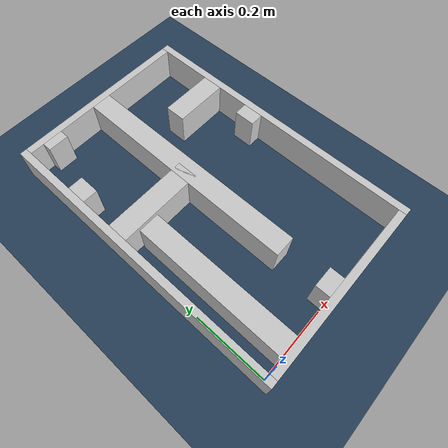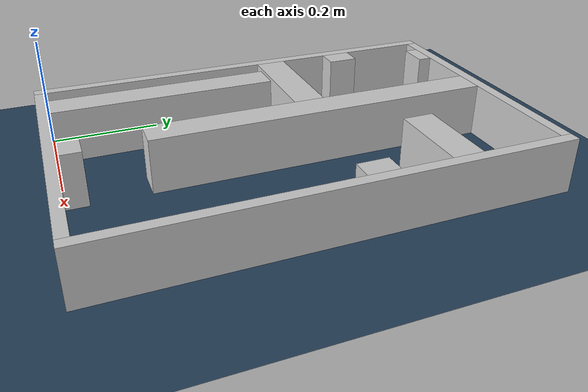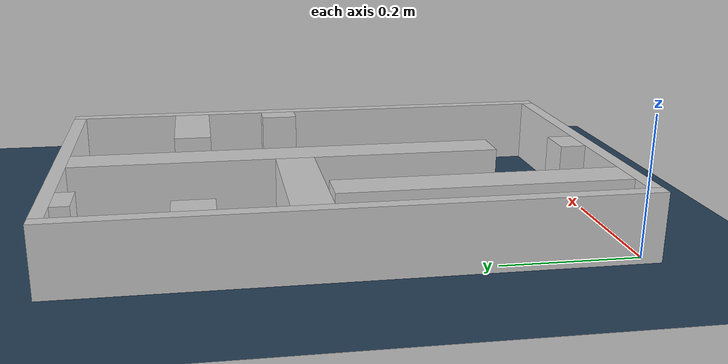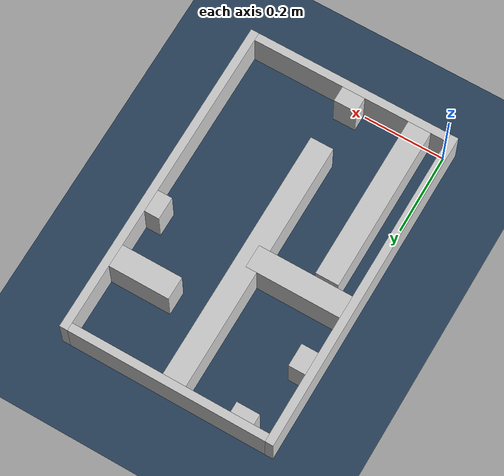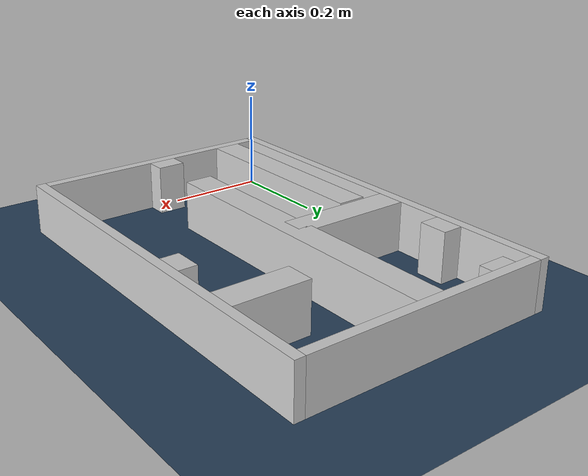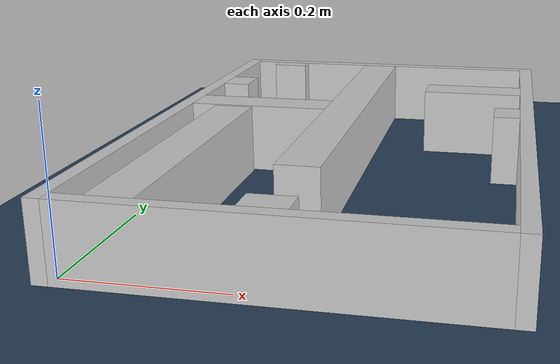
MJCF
<?xml version="1.0" ?>
<mujoco model="generated_real_template">
  <compiler angle="degree"/>
  <option timestep="0.002" integrator="implicitfast" iterations="100" cone="elliptic"/>
  <default>
    <geom density="1"/>
  </default>
  <asset>
    <texture builtin="gradient" height="3072" rgb1="0.3 0.5 0.7" rgb2="0 0 0" type="skybox" width="512"/>
    <texture builtin="checker" height="300" mark="edge" markrgb="0.8 0.8 0.8" name="groundplane" rgb1="0.2 0.3 0.4" rgb2="0.1 0.2 0.3" type="2d" width="300"/>
    <material name="groundplane" reflectance="0.2" texrepeat="5 5" texture="groundplane" texuniform="true"/>
  </asset>
  <worldbody>
    <light dir="0 0 -1" directional="true" pos="0 0 1.5"/>
    <geom name="floor" type="plane" condim="4" friction="0.5 0.005 0.001" material="groundplane" size="0 0 0.05"/>
    <body name="walls">
      <geom name="wall_boundary_left" type="box" condim="4" friction="1.0 0.005 0.0001" rgba="0.8 0.8 0.8 1" pos="-0.010000 0.387500 0.050000" euler="0 0 0.000000" size="0.010000 0.407500 0.050000"/>
      <geom name="wall_boundary_right" type="box" condim="4" friction="1.0 0.005 0.0001" rgba="0.8 0.8 0.8 1" pos="0.500000 0.387500 0.050000" euler="0 0 0.000000" size="0.010000 0.407500 0.050000"/>
      <geom name="wall_boundary_bottom" type="box" condim="4" friction="1.0 0.005 0.0001" rgba="0.8 0.8 0.8 1" pos="0.245000 -0.010000 0.050000" euler="0 0 0.000000" size="0.245000 0.010000 0.050000"/>
      <geom name="wall_boundary_top" type="box" condim="4" friction="1.0 0.005 0.0001" rgba="0.8 0.8 0.8 1" pos="0.245000 0.785000 0.050000" euler="0 0 0.000000" size="0.245000 0.010000 0.050000"/>
      <geom name="wall_inner_1_1" type="box" condim="4" friction="1.0 0.005 0.0001" rgba="0.8 0.8 0.8 1" pos="0.067251 0.206807 0.050000" euler="0 0 90.000000" size="0.206807 0.028500 0.050000"/>
      <geom name="wall_inner_1_2" type="box" condim="4" friction="1.0 0.005 0.0001" rgba="0.8 0.8 0.8 1" pos="0.067251 0.762014 0.050000" euler="0 0 90.000000" size="0.012986 0.028500 0.050000"/>
      <geom name="wall_inner_2_1" type="box" condim="4" friction="1.0 0.005 0.0001" rgba="0.8 0.8 0.8 1" pos="0.020636 0.596233 0.050000" euler="0 0 0.000000" size="0.020636 0.028500 0.050000"/>
      <geom name="wall_inner_2_2" type="box" condim="4" friction="1.0 0.005 0.0001" rgba="0.8 0.8 0.8 1" pos="0.414719 0.596233 0.050000" euler="0 0 0.000000" size="0.075281 0.028500 0.050000"/>
      <geom name="wall_inner_3_1" type="box" condim="4" friction="1.0 0.005 0.0001" rgba="0.8 0.8 0.8 1" pos="0.234460 0.019352 0.050000" euler="0 0 90.000000" size="0.019352 0.028500 0.050000"/>
      <geom name="wall_inner_3_2" type="box" condim="4" friction="1.0 0.005 0.0001" rgba="0.8 0.8 0.8 1" pos="0.234460 0.458223 0.050000" euler="0 0 90.000000" size="0.316777 0.028500 0.050000"/>
      <geom name="wall_inner_4_1" type="box" condim="4" friction="1.0 0.005 0.0001" rgba="0.8 0.8 0.8 1" pos="0.116715 0.448155 0.050000" euler="0 0 0.000000" size="0.116715 0.028500 0.050000"/>
      <geom name="wall_inner_4_2" type="box" condim="4" friction="1.0 0.005 0.0001" rgba="0.8 0.8 0.8 1" pos="0.471506 0.448155 0.050000" euler="0 0 0.000000" size="0.018494 0.028500 0.050000"/>
    </body>
  </worldbody>
</mujoco>
